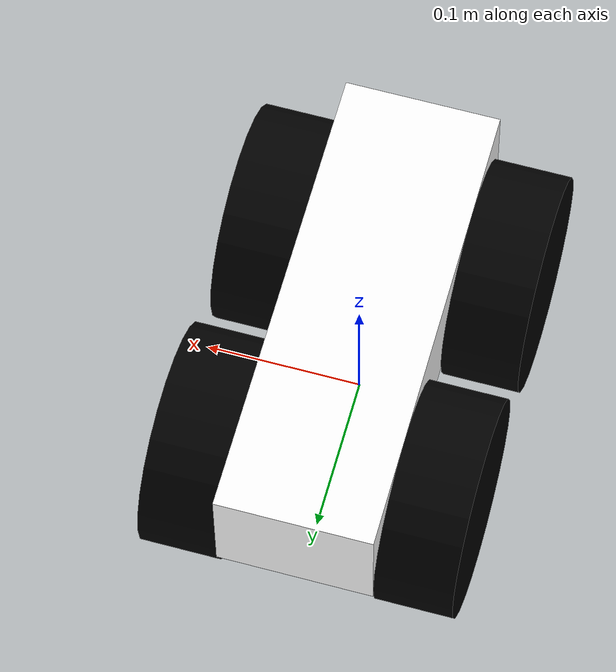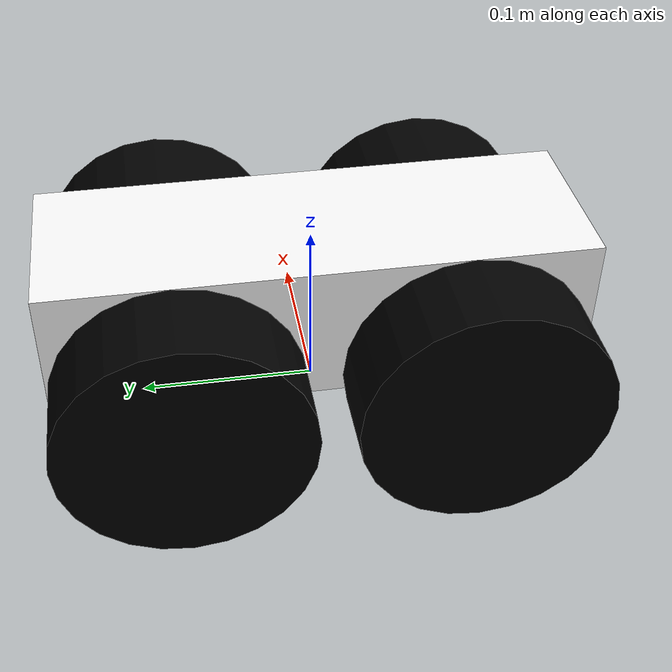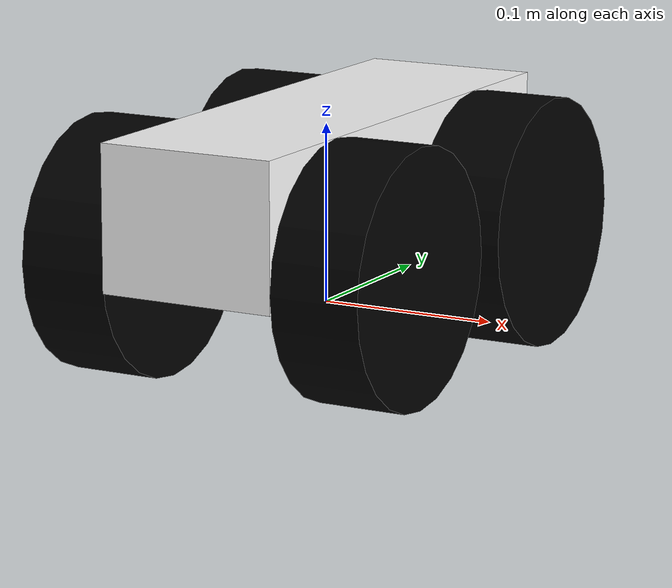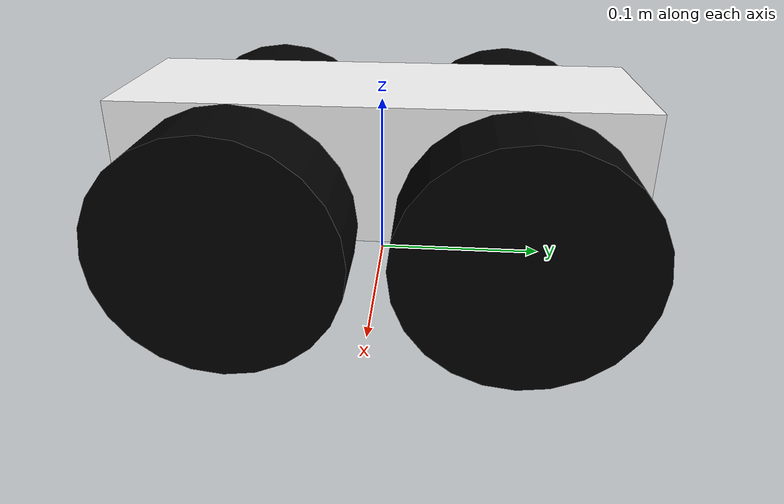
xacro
<?xml version="1.0"?>
<!-- 4 wheeled mecanum robot -->
<!-- Created by Justice John Owusu -->
<!-- Date 2026-03-18 -->
<!-- Updated for Mecanum Drive -->

<robot name="bob"
    xmlns:xacro="http://www.ros.org/wiki/xacro">

    <!-- dimensions of the body -->
    <xacro:property name="bx_dim" value="0.1"/>
    <xacro:property name="by_dim" value="0.3"/>
    <xacro:property name="bz_dim" value="0.08"/>

    <!-- Wheel dimensions -->
    <xacro:property name="w_rad" value="0.07"/>
    <xacro:property name="w_len" value="0.05"/>
    <xacro:property name="w_z" value="${2*w_rad - bz_dim/2}"/>

    <!-- Constants -->
    <xacro:property name="pi_const" value="3.14159265358"/>

    <!-- Densities -->
    <xacro:property name="b_dens" value="10000"/>
    <xacro:property name="w_dens" value="10000"/>

    <!-- Masses -->
    <xacro:property name="b_mass" value="${b_dens * bx_dim * by_dim * bz_dim}"/>
    <xacro:property name="w_mass" value="${w_dens * pi_const * w_rad * w_rad * w_len}"/>

    <!-- Wheel properties -->
    <xacro:property name="I_wheel" value="${0.5 * w_mass * w_rad * w_rad}"/>
    <xacro:property name="effort" value="1000"/>
    <xacro:property name="velocity" value="1000"/>
    <xacro:property name="friction" value="1.0"/>
    <xacro:property name="damping" value="1.0"/>

    <!-- Wheel inertia macro -->
    <xacro:macro name="wheel_inertia">
        <inertial>
            <origin rpy="0 0 0" xyz="0 0 0"/>
            <mass value="${w_mass}"/>
            <inertia ixx="${I_wheel}" ixy="0.0" ixz="0.0" iyy="${I_wheel}" iyz="0.0" izz="${I_wheel}"/>
        </inertial>
    </xacro:macro>

    <!-- Wheel link macro -->
    <!-- rpy_val lets each wheel pass in its own roller angle (+45 or -45 deg) -->
    <xacro:macro name="wheel_def" params="name rpy_val">
        <link name="${name}">
            <visual>
                <origin rpy="0 ${rpy_val} 0" xyz="0 0 0"/>
                <geometry>
                    <cylinder radius="${w_rad}" length="${w_len}"/>
                </geometry>
                <material name="black">
                    <color rgba="0 0 0 1"/>
                </material>
            </visual>

            <collision>
                <origin rpy="0 ${rpy_val} 0" xyz="0 0 0"/>
                <geometry>
                    <cylinder radius="${w_rad}" length="${w_len}"/>
                </geometry>
            </collision>

            <xacro:wheel_inertia/>
        </link>
    </xacro:macro>

    <!-- Dummy link -->
    <link name="dummy"/>

    <joint name="dummy_joint" type="fixed">
        <parent link="dummy"/>
        <child link="body"/>
        <origin rpy="0 0 0" xyz="0 0 ${w_rad}"/>
    </joint>

    <!-- Body link -->
    <link name="body">
        <visual>
            <origin rpy="0 0 0" xyz="0 0 0"/>
            <geometry>
                <box size="${bx_dim} ${by_dim} ${bz_dim}"/>
            </geometry>
            <material name="white">
                <color rgba="1 1 1 1"/>
            </material>
        </visual>

        <collision>
            <origin rpy="0 0 0" xyz="0 0 0"/>
            <geometry>
                <box size="${bx_dim} ${by_dim} ${bz_dim}"/>
            </geometry>
        </collision>

        <inertial>
            <origin rpy="0 0 0" xyz="0 0 0"/>
            <mass value="${b_mass}"/>
            <inertia ixx="${b_mass * (by_dim*by_dim + bz_dim*bz_dim) / 12.0}" ixy="0.0" ixz="0.0" iyy="${(1.0/12.0) * b_mass * (bx_dim*bx_dim + bz_dim*bz_dim)}" iyz="0.0" izz="${(1.0/12.0) * b_mass * (bx_dim*bx_dim + by_dim*by_dim)}"/>
        </inertial>
    </link>

    <!-- Wheel joints — axis is Y for mecanum -->
    <joint name="wj_LF" type="continuous">
        <parent link="body"/>
        <child link="LF_wheel"/>
        <origin xyz="${-bx_dim/2 - w_len/2} ${-by_dim/2 + w_rad} ${bz_dim/2 - w_rad}" rpy="0 0 0"/>
        <axis xyz="1 0 0"/>
        <limit effort="${effort}" velocity="${velocity}"/>
        <dynamics damping="${damping}" friction="${friction}"/>
    </joint>

    <joint name="wj_LB" type="continuous">
        <parent link="body"/>
        <child link="LB_wheel"/>
        <origin xyz="${-bx_dim/2 - w_len/2} ${by_dim/2 - w_rad} ${bz_dim/2 - w_rad}" rpy="0 0 0"/>
        <axis xyz="1 0 0"/>
        <limit effort="${effort}" velocity="${velocity}"/>
        <dynamics damping="${damping}" friction="${friction}"/>
    </joint>

    <joint name="wj_RF" type="continuous">
        <parent link="body"/>
        <child link="RF_wheel"/>
        <origin xyz="${bx_dim/2 + w_len/2} ${-by_dim/2 + w_rad} ${bz_dim/2 - w_rad}" rpy="0 0 0"/>
        <axis xyz="1 0 0"/>
        <limit effort="${effort}" velocity="${velocity}"/>
        <dynamics damping="${damping}" friction="${friction}"/>
    </joint>

    <joint name="wj_RB" type="continuous">
        <parent link="body"/>
        <child link="RB_wheel"/>
        <origin xyz="${bx_dim/2 + w_len/2} ${by_dim/2 - w_rad} ${bz_dim/2 - w_rad}" rpy="0 0 0"/>
        <axis xyz="1 0 0"/>
        <limit effort="${effort}" velocity="${velocity}"/>
        <dynamics damping="${damping}" friction="${friction}"/>
    </joint>

    <!-- Wheel links                    -->
    <!-- LF and RB share one diagonal   -->
    <!-- RF and LB share the other      -->

    <!-- Left-leaning rollers  (+45 deg) : LF and RB -->
    <xacro:wheel_def name="LF_wheel" rpy_val="${pi_const/2}"/>
    <xacro:wheel_def name="RB_wheel" rpy_val="${pi_const/2}"/>

    <!-- Right-leaning rollers (-45 deg) : RF and LB -->
    <xacro:wheel_def name="RF_wheel" rpy_val="${-pi_const/2}"/>
    <xacro:wheel_def name="LB_wheel" rpy_val="${-pi_const/2}"/>

</robot>
